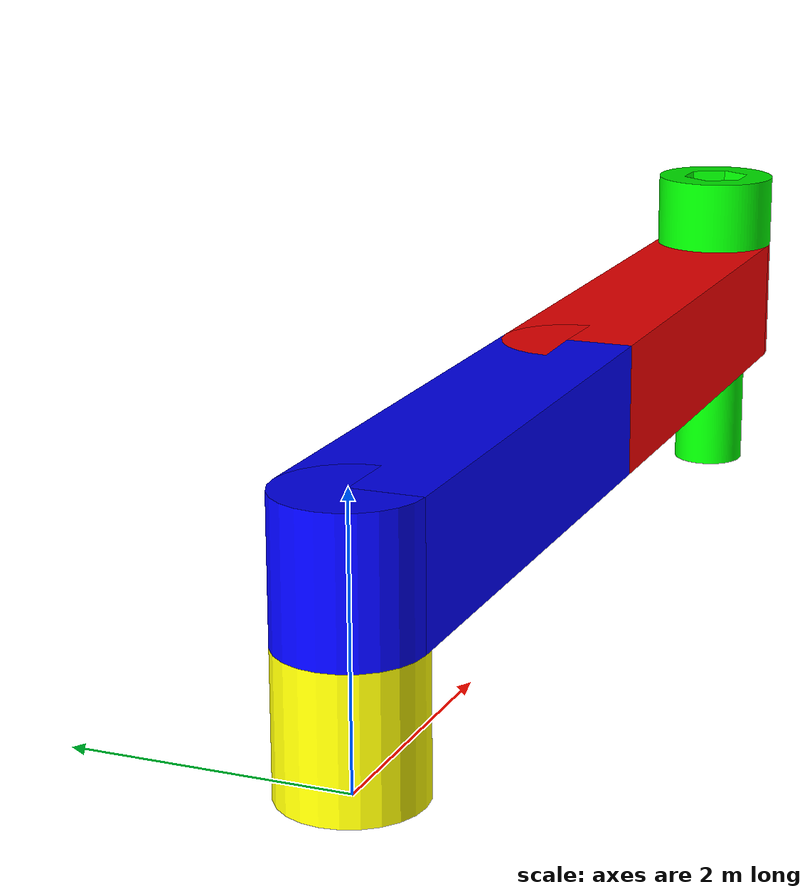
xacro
<?xml version="1.0"?>
<robot xmlns:xacro="http://www.ros.org/wiki/xacro" name="scara">

<!-- xacro consegue meter ficheiro  ca dentro, e abri los -->

<xacro:property name="length_cil" value="1" />
<xacro:property name="radius_cil" value="0.5" />

<material name="blue">
    <color rgba="0 0 1 1"/>
  </material>
  <material name="red">
    <color rgba="1 0 0 1"/>
  </material>
  <material name="green">
    <color rgba="0 1 0 1"/>
  </material>
      <material name="black">
    <color rgba="1 1 0 1"/>
  </material>

  <link name="base_link">
    <visual>
      <geometry>
        <cylinder length="${length_cil}" radius="${radius_cil}"/>
      </geometry>
       <origin rpy="0 0 0" xyz="0 0 0.5"/>
      <material name="black"/>
    </visual>
  </link>

   <link name="base_link_f">
    <visual>
      <geometry>
        <cylinder length="${length_cil}" radius="${radius_cil}"/>
      </geometry>
       <origin rpy="0 0 0" xyz="0 0 -0.5"/>
      <material name="blue"/>
    </visual>
  </link>

  <joint name="base_link_to_base_link_f" type="fixed">
    <parent link="base_link"/>
    <child link="base_link_f"/>
    <origin xyz="0 0 2"/>
  </joint>

  <link name="link1">
    <visual>
      <geometry>
        <box size="4 1 1"/>
      </geometry>
      <origin rpy="1.57075 0 0" xyz="2 0 -0.5"/>
      <material name="blue"/>
    </visual>
  </link>

  <joint name="base_link_to_link1" type="continuous">
    <parent link="base_link"/>
    <child link="link1"/>
      <axis xyz="0 0 1"/>
    <origin xyz="0 0 2"/>
  </joint>

  <link name="link2">
    <visual>
      <geometry>
        <box size="4 1 1"/>
      </geometry>
      <origin rpy="1.57075 0 0" xyz="2 0 -0.5"/>
      <material name="red"/>
    </visual>
  </link>

  <joint name="link1_to_link2" type="continuous">
    <parent link="link1"/>
    <child link="link2"/>
      <axis xyz="0 0 1"/>
    <origin xyz="4 0 0"/>
  </joint>

   <link name="link1_f">
    <visual>
      <geometry>
        <cylinder length="${length_cil}" radius="${radius_cil}"/>
      </geometry>
      <origin rpy="0 0 0" xyz="0 0 -0.5"/>
      <material name="red"/>
    </visual>
  </link>

   <joint name="link1_to_link1_f" type="fixed">
    <parent link="link1"/>
    <child link="link1_f"/>
    <origin xyz="4 0 0"/>
  </joint>

  <link name="link2_f">
    <visual>
      <geometry>
         <cylinder length="${length_cil}" radius="${radius_cil}"/>
      </geometry>
      <origin rpy="0 0 0" xyz="0 0 -0.5"/>
      <material name="red"/>
    </visual>
  </link>

  <joint name="link2_to_link2_f" type="fixed">
    <parent link="link2"/>
    <child link="link2_f"/>
    <origin xyz="4 0 0"/>
  </joint>

 <link name="ee_link">
    <visual>
      <geometry>
         <mesh filename="package://pari_aula11/stl/boltDemo.stl" scale="0.1 0.1 0.1"/>
      </geometry>
      <origin rpy="0 0 0" xyz="0 0 1"/>
      <material name="green"/>
    </visual>
  </link>

  <joint name="link2_f_to_ee_link" type="prismatic">
    <parent link="link2_f"/>
    <child link="ee_link"/>
    <limit effort="1000.0" lower="-1.5" upper="1.5" velocity="0.5"/>
    <axis xyz="0 0 1"/>
    <origin xyz="0 0 -1"/>
  </joint>

</robot>
